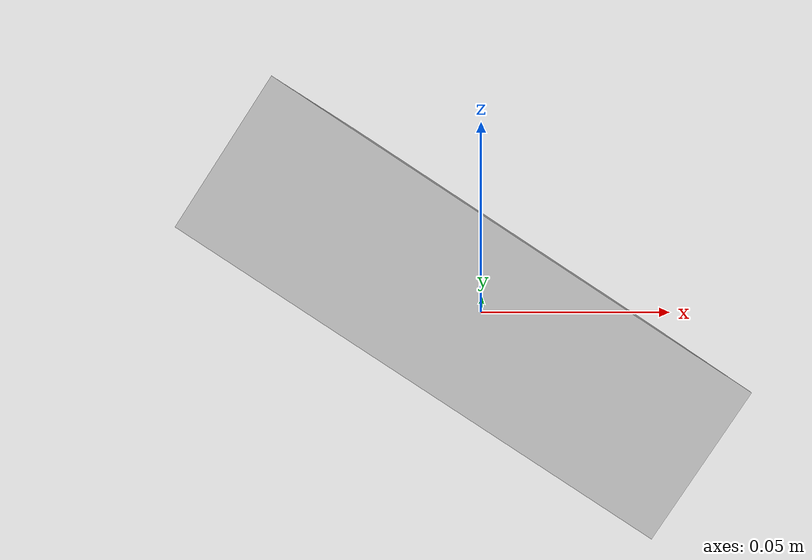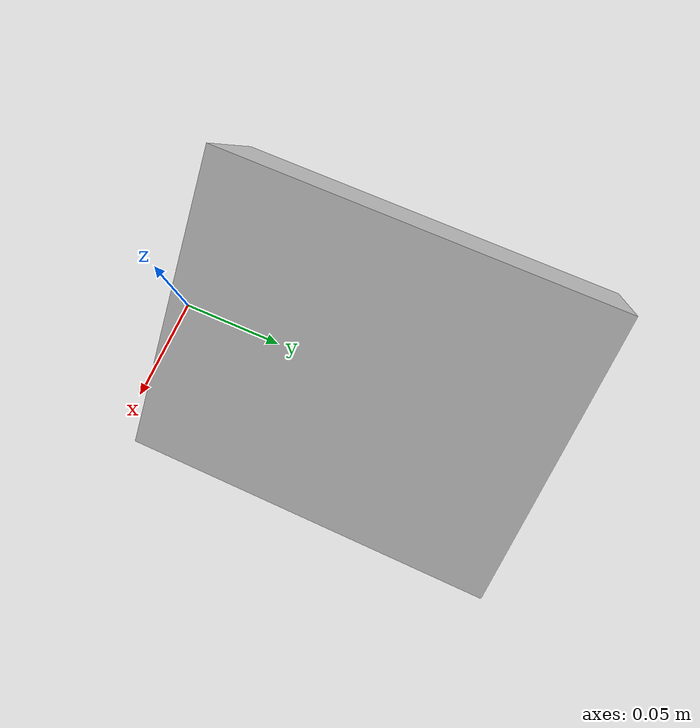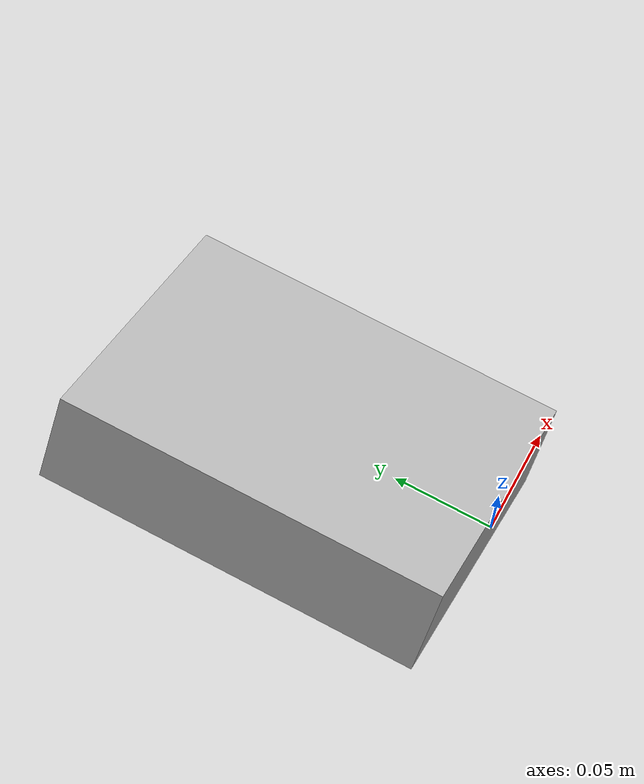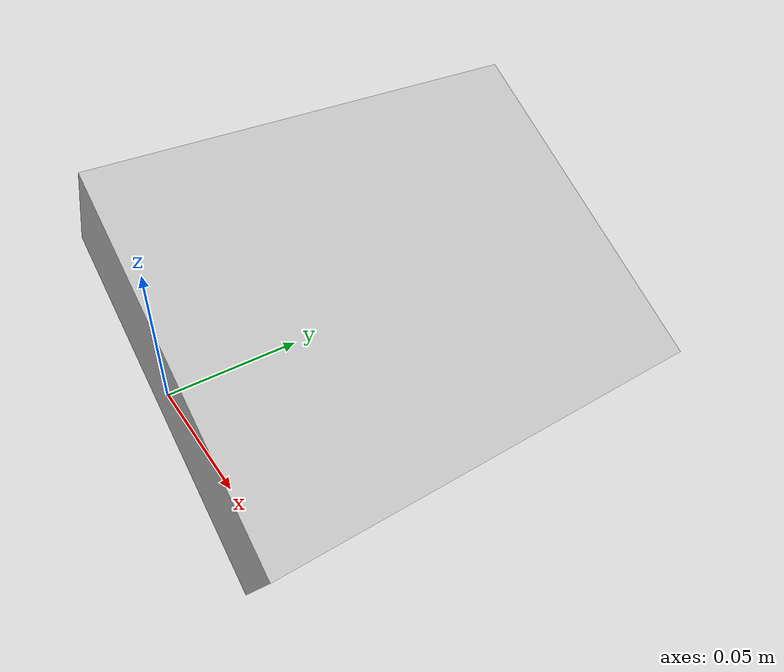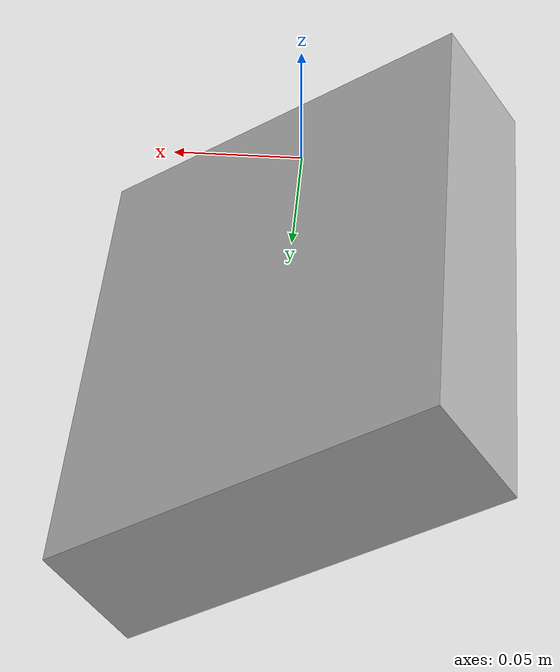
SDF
<?xml version="1.0" ?>
<sdf version='1.4'>
  <model name="crackers">
      <static>0</static>
      <link name='link'>
        <inertial>
          <mass>0.0189132</mass>
          <inertia>
            <ixx>3.36060179959e-06</ixx>
            <ixy>0.000000</ixy>
            <ixz>0.000000</ixz>
            <iyy>3.36060179959e-06</iyy>
            <iyz>0.000000</iyz>
            <izz>1.34975977923e-06</izz>
          </inertia>
        </inertial>
        <collision name='collision'>
          <geometry>
            <mesh>
              <uri>model://crackers_gazebo/meshes/crackers.dae</uri>
              <scale>0.0254 0.0254 0.0254</scale>
            </mesh>
          </geometry>
          <surface>
            <friction>
              <ode>
                <mu>30.0</mu>
                <mu2>30.0</mu2>
              </ode>
            </friction>
          </surface>
        </collision>
        <visual name='visual'>
          <geometry>
            <mesh>
              <uri>model://crackers_gazebo/meshes/crackers.dae</uri>
              <scale>0.0254 0.0254 0.0254</scale>
            </mesh>
          </geometry>
        </visual>
        <velocity_decay>
          <linear>0.000000</linear>
          <angular>0.000000</angular>
        </velocity_decay>
        <self_collide>0</self_collide>
        <kinematic>0</kinematic>
        <gravity>1</gravity>
      </link>
  </model>
</sdf>
